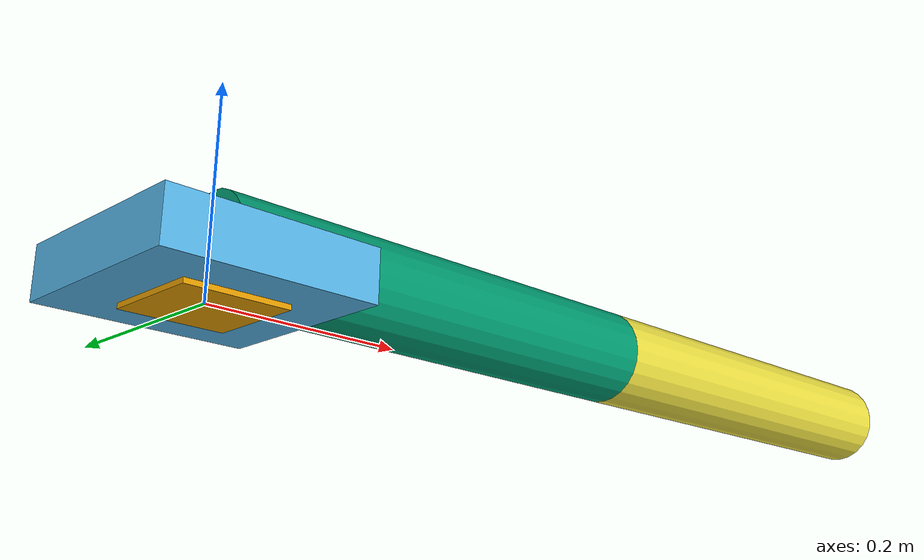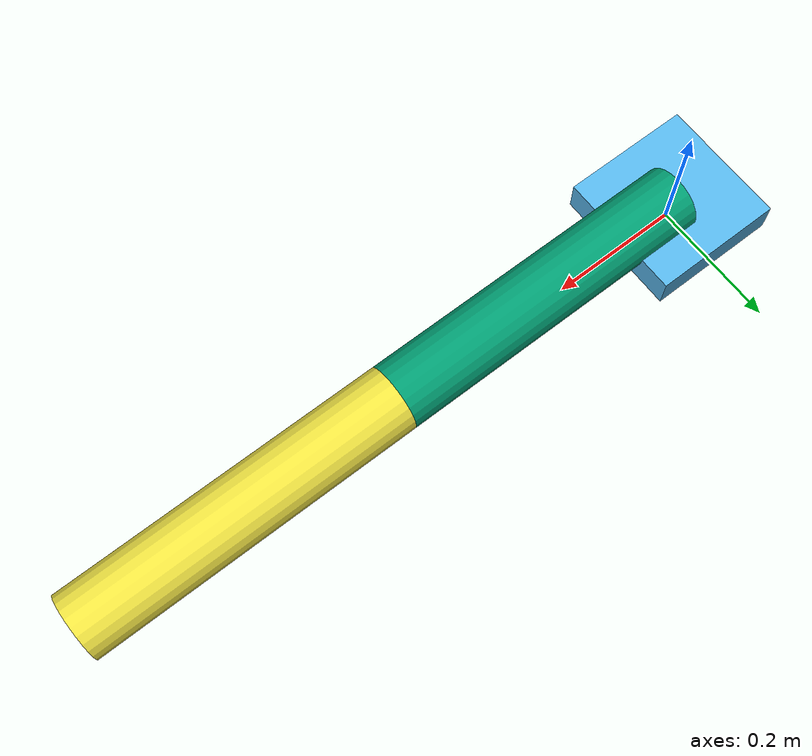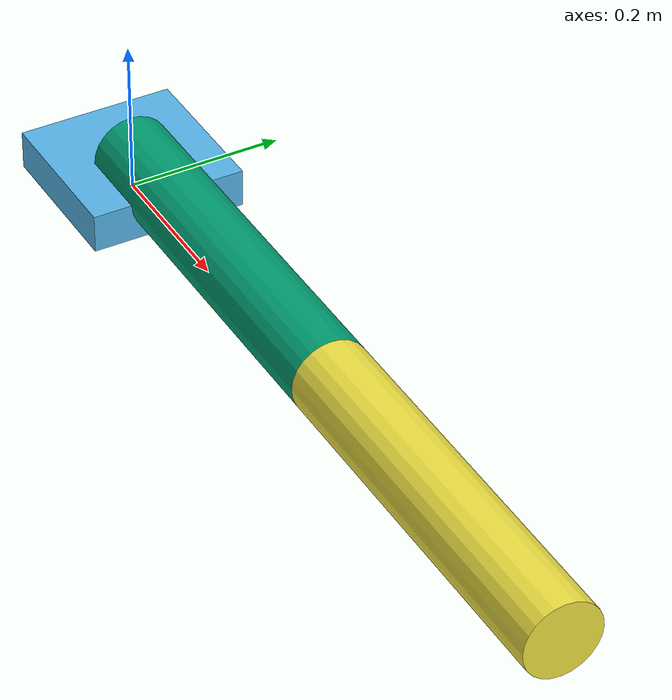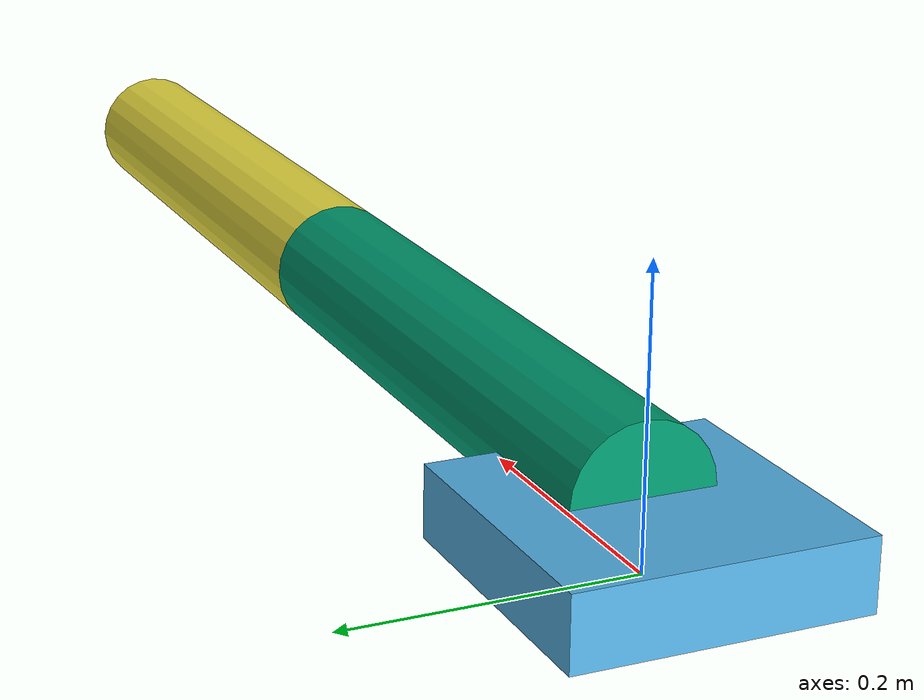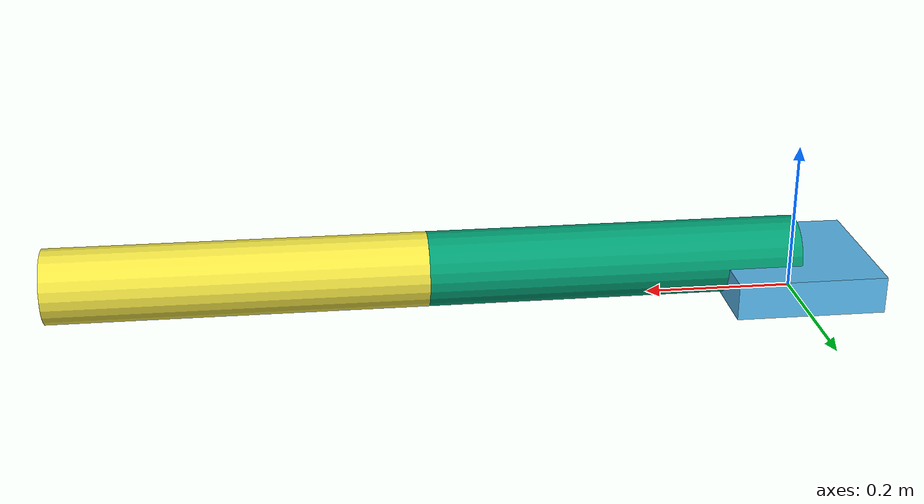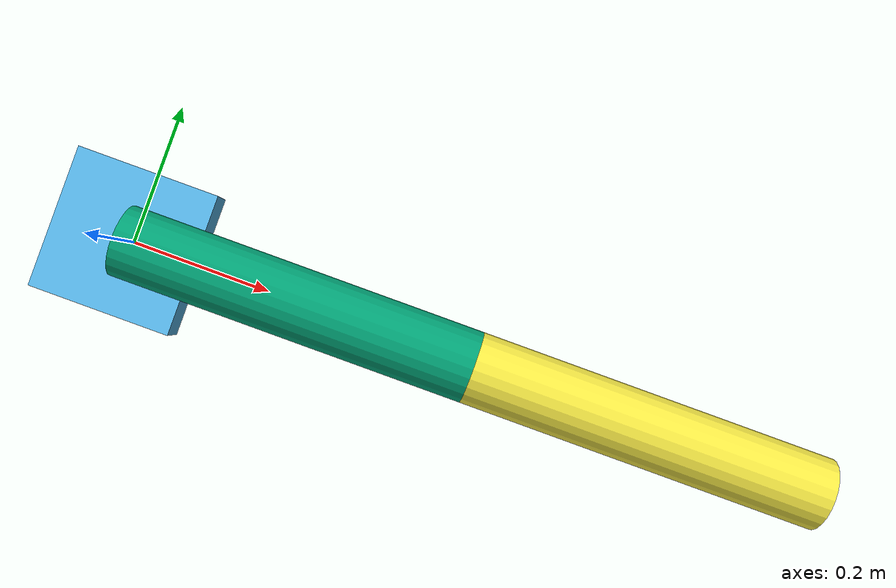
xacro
<?xml version="1.0"?>
<robot name="2linkarm">

  <!-- Link Definitions -->
  <link name="base_footprint">
    <visual>
      <geometry>
        <box size="0.1 0.1 0.01"/>
      </geometry>
      <origin xyz="0 0 0" rpy="0 0 0"/>
    </visual>
    <material name="blue">
        <color rgba="0 0 1 1"/>
    </material>
  </link>

  <link name="base_link">
    <visual>
      <geometry>
        <box size="0.2 0.2 0.05"/>
      </geometry>
      <origin xyz="0 0 0.025" rpy="0 0 0"/>
    </visual>
    <material name="blue">
        <color rgba="0 0 1 1"/>
    </material>
  </link>

  <link name="link_1">
    <visual>
      <origin xyz="0.25 0 0" rpy="0 1.5707 0"/>
      <geometry>
        <cylinder radius="0.05" length="0.5"/>
      </geometry>
    </visual>
    <inertial>
      <mass value="1.0"/>
      <origin xyz="0.25 0 0" rpy="0 0 0"/>
      <inertia ixx="0.02" ixy="0.0" ixz="0.0" iyy="0.02" iyz="0.0" izz="0.02"/>
    </inertial>
    <material name="blue">
        <color rgba="0 0 1 1"/>
    </material>
  </link>

  <link name="link_2">
    <visual>
      <origin xyz="0.25 0 0" rpy="0 1.5707 0"/>
      <geometry>
        <cylinder radius="0.05" length="0.5"/>
      </geometry>
    </visual>
    <inertial>
      <mass value="1.0"/>
      <origin xyz="0.25 0 0" rpy="0 0 0"/>
      <inertia ixx="0.02" ixy="0.0" ixz="0.0" iyy="0.02" iyz="0.0" izz="0.02"/>
    </inertial>
    <material name="blue">
        <color rgba="0 0 1 1"/>
    </material>
  </link>

  <!-- Joint Definitions -->
  <joint type="fixed" name="dummy">
    <origin xyz="0.0 0.0 0" rpy="0 0 0"/>
    <parent link="base_footprint"/>
    <child link="base_link"/>
  </joint>

  <joint type="continuous" name="joint_1">
    <origin xyz="0.0 0.0 0.05" rpy="0 0 0"/>
    <parent link="base_link"/>
    <child link="link_1"/>
    <axis xyz="0 0 1"/>
  </joint>

  <joint type="continuous" name="joint_2">
    <origin xyz="0.5 0.0 0.0" rpy="0 0 0"/>
    <parent link="link_1"/>
    <child link="link_2"/>
    <axis xyz="0 0 1"/>
  </joint>

</robot>
